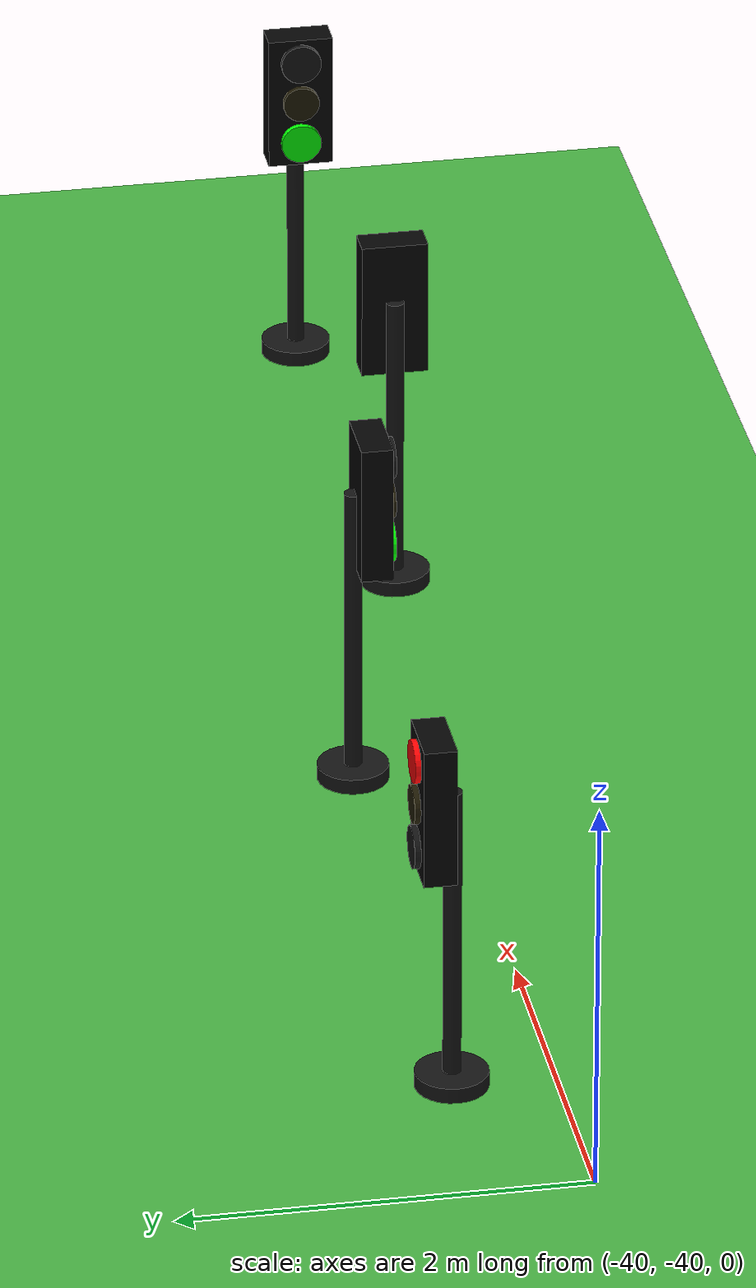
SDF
<sdf version="1.10">
 <world name="city_second">
  <model name="ground_plane">
   <static>true</static>
   <link name="link">
    <collision name="collision">
     <geometry><plane><normal>0 0 1</normal><size>300 300</size></plane></geometry>
    </collision>
    <visual name="visual">
     <geometry><plane><normal>0 0 1</normal><size>300 300</size></plane></geometry>
     <material>
      <ambient>0.280000001 0.689999998 0.25999999 1</ambient>
      <diffuse>0.280000001 0.689999998 0.25999999 1</diffuse>
      <specular>0.0299999993 0.0299999993 0.0299999993 1</specular>
     </material>
    </visual>
    <inertial>
     <mass>1</mass>
     <inertia><ixx>1</ixx><ixy>0</ixy><ixz>0</ixz><iyy>1</iyy><iyz>0</iyz><izz>1</izz></inertia>
    </inertial>
   </link>
  </model>
  <model name="simple_traffic_light_red_north">
   <static>true</static>
   <pose>-39 -39.5 0 0 0 0</pose>
   <link name="base">
    <pose>0 0 0.040000000000000001 0 0 0</pose>
    <collision name="collision">
     <geometry>
      <cylinder><radius>0.17999999999999999</radius><length>0.080000000000000002</length></cylinder>
     </geometry>
    </collision>
    <visual name="visual">
     <geometry>
      <cylinder><radius>0.17999999999999999</radius><length>0.080000000000000002</length></cylinder>
     </geometry>
     <material>
      <ambient>0.0799999982 0.0799999982 0.0799999982 1</ambient>
      <diffuse>0.0799999982 0.0799999982 0.0799999982 1</diffuse>
      <specular>0.150000006 0.150000006 0.150000006 1</specular>
      <emissive>0 0 0 1</emissive>
     </material>
    </visual>
    <inertial>
     <mass>1</mass>
     <inertia><ixx>1</ixx><ixy>0</ixy><ixz>0</ixz><iyy>1</iyy><iyz>0</iyz><izz>1</izz></inertia>
    </inertial>
   </link>
   <link name="pole">
    <pose>0 0 0.80000000000000004 0 0 0</pose>
    <collision name="collision">
     <geometry>
      <cylinder><radius>0.044999999999999998</radius><length>1.6000000000000001</length></cylinder>
     </geometry>
    </collision>
    <visual name="visual">
     <geometry>
      <cylinder><radius>0.044999999999999998</radius><length>1.6000000000000001</length></cylinder>
     </geometry>
     <material>
      <ambient>0.0799999982 0.0799999982 0.0799999982 1</ambient>
      <diffuse>0.0799999982 0.0799999982 0.0799999982 1</diffuse>
      <specular>0.150000006 0.150000006 0.150000006 1</specular>
      <emissive>0 0 0 1</emissive>
     </material>
    </visual>
    <inertial>
     <mass>1</mass>
     <inertia><ixx>1</ixx><ixy>0</ixy><ixz>0</ixz><iyy>1</iyy><iyz>0</iyz><izz>1</izz></inertia>
    </inertial>
   </link>
   <link name="signal_box">
    <pose>0 0.089999999999999997 1.55 0 0 0</pose>
    <collision name="collision">
     <geometry><box><size>0.34000000000000002 0.16 0.71999999999999997</size></box></geometry>
    </collision>
    <visual name="visual">
     <geometry><box><size>0.34000000000000002 0.16 0.71999999999999997</size></box></geometry>
     <material>
      <ambient>0.0199999996 0.0199999996 0.0199999996 1</ambient>
      <diffuse>0.0199999996 0.0199999996 0.0199999996 1</diffuse>
      <specular>0.150000006 0.150000006 0.150000006 1</specular>
      <emissive>0 0 0 1</emissive>
     </material>
    </visual>
    <inertial>
     <mass>1</mass>
     <inertia><ixx>1</ixx><ixy>0</ixy><ixz>0</ixz><iyy>1</iyy><iyz>0</iyz><izz>1</izz></inertia>
    </inertial>
   </link>
   <link name="red_lens">
    <pose>0 0.18099999999999999 1.78 1.5708 0 0</pose>
    <collision name="collision">
     <geometry><cylinder><radius>0.105</radius><length>0.035000000000000003</length></cylinder></geometry>
    </collision>
    <visual name="visual">
     <geometry><cylinder><radius>0.105</radius><length>0.035000000000000003</length></cylinder></geometry>
     <material>
      <ambient>1 0.0199999996 0.0199999996 1</ambient>
      <diffuse>1 0.0199999996 0.0199999996 1</diffuse>
      <specular>0.150000006 0.150000006 0.150000006 1</specular>
      <emissive>1 0.0199999996 0.0199999996 1</emissive>
     </material>
    </visual>
    <inertial>
     <mass>1</mass>
     <inertia><ixx>1</ixx><ixy>0</ixy><ixz>0</ixz><iyy>1</iyy><iyz>0</iyz><izz>1</izz></inertia>
    </inertial>
   </link>
   <link name="yellow_lens">
    <pose>0 0.182 1.55 1.5708 0 0</pose>
    <collision name="collision">
     <geometry>
      <cylinder><radius>0.095000000000000001</radius><length>0.035000000000000003</length></cylinder>
     </geometry>
    </collision>
    <visual name="visual">
     <geometry>
      <cylinder><radius>0.095000000000000001</radius><length>0.035000000000000003</length></cylinder>
     </geometry>
     <material>
      <ambient>0.119999997 0.100000001 0.0199999996 1</ambient>
      <diffuse>0.119999997 0.100000001 0.0199999996 1</diffuse>
      <specular>0.150000006 0.150000006 0.150000006 1</specular>
      <emissive>0 0 0 1</emissive>
     </material>
    </visual>
    <inertial>
     <mass>1</mass>
     <inertia><ixx>1</ixx><ixy>0</ixy><ixz>0</ixz><iyy>1</iyy><iyz>0</iyz><izz>1</izz></inertia>
    </inertial>
   </link>
   <link name="green_lens">
    <pose>0 0.183 1.3200000000000001 1.5708 0 0</pose>
    <collision name="collision">
     <geometry><cylinder><radius>0.105</radius><length>0.035000000000000003</length></cylinder></geometry>
    </collision>
    <visual name="visual">
     <geometry><cylinder><radius>0.105</radius><length>0.035000000000000003</length></cylinder></geometry>
     <material>
      <ambient>0.0799999982 0.0799999982 0.0799999982 1</ambient>
      <diffuse>0.0799999982 0.0799999982 0.0799999982 1</diffuse>
      <specular>0.150000006 0.150000006 0.150000006 1</specular>
      <emissive>0 0 0 1</emissive>
     </material>
    </visual>
    <inertial>
     <mass>1</mass>
     <inertia><ixx>1</ixx><ixy>0</ixy><ixz>0</ixz><iyy>1</iyy><iyz>0</iyz><izz>1</izz></inertia>
    </inertial>
   </link>
   <light name="red_glow" type="point">
    <pose>0 0.28 1.78 0 0 0</pose>
    <diffuse>1 0.02 0.02 1</diffuse>
    <specular>1 0.02 0.02 1</specular>
    <attenuation>
     <range>3.0</range>
     <constant>0.8</constant>
     <linear>0.15</linear>
     <quadratic>0.02</quadratic>
    </attenuation>
    <cast_shadows>false</cast_shadows>
   </light>
  </model>
  <model name="simple_traffic_light_green_south_1">
   <static>true</static>
   <pose>-35.989600000000003 -39.561300000000003 0 0 0 -3.1415899999999999</pose>
   <link name="base">
    <pose>0 0 0.040000000000000001 0 0 0</pose>
    <collision name="collision">
     <geometry>
      <cylinder><radius>0.17999999999999999</radius><length>0.080000000000000002</length></cylinder>
     </geometry>
    </collision>
    <visual name="visual">
     <geometry>
      <cylinder><radius>0.17999999999999999</radius><length>0.080000000000000002</length></cylinder>
     </geometry>
     <material>
      <ambient>0.0799999982 0.0799999982 0.0799999982 1</ambient>
      <diffuse>0.0799999982 0.0799999982 0.0799999982 1</diffuse>
      <specular>0.150000006 0.150000006 0.150000006 1</specular>
      <emissive>0 0 0 1</emissive>
     </material>
    </visual>
    <inertial>
     <mass>1</mass>
     <inertia><ixx>1</ixx><ixy>0</ixy><ixz>0</ixz><iyy>1</iyy><iyz>0</iyz><izz>1</izz></inertia>
    </inertial>
   </link>
   <link name="pole">
    <pose>-7.10543e-15 7.10543e-15 0.80000000000000004 0 0 0</pose>
    <collision name="collision">
     <geometry>
      <cylinder><radius>0.044999999999999998</radius><length>1.6000000000000001</length></cylinder>
     </geometry>
    </collision>
    <visual name="visual">
     <geometry>
      <cylinder><radius>0.044999999999999998</radius><length>1.6000000000000001</length></cylinder>
     </geometry>
     <material>
      <ambient>0.0799999982 0.0799999982 0.0799999982 1</ambient>
      <diffuse>0.0799999982 0.0799999982 0.0799999982 1</diffuse>
      <specular>0.150000006 0.150000006 0.150000006 1</specular>
      <emissive>0 0 0 1</emissive>
     </material>
    </visual>
    <inertial>
     <mass>1</mass>
     <inertia><ixx>1</ixx><ixy>0</ixy><ixz>0</ixz><iyy>1</iyy><iyz>0</iyz><izz>1</izz></inertia>
    </inertial>
   </link>
   <link name="signal_box">
    <pose>-7.10543e-15 0.089999999999999997 1.55 0 0 0</pose>
    <collision name="collision">
     <geometry><box><size>0.34000000000000002 0.16 0.71999999999999997</size></box></geometry>
    </collision>
    <visual name="visual">
     <geometry><box><size>0.34000000000000002 0.16 0.71999999999999997</size></box></geometry>
     <material>
      <ambient>0.0199999996 0.0199999996 0.0199999996 1</ambient>
      <diffuse>0.0199999996 0.0199999996 0.0199999996 1</diffuse>
      <specular>0.150000006 0.150000006 0.150000006 1</specular>
      <emissive>0 0 0 1</emissive>
     </material>
    </visual>
    <inertial>
     <mass>1</mass>
     <inertia><ixx>1</ixx><ixy>0</ixy><ixz>0</ixz><iyy>1</iyy><iyz>0</iyz><izz>1</izz></inertia>
    </inertial>
   </link>
   <link name="red_lens">
    <pose>-7.10543e-15 0.18099999999999999 1.78 1.5708 1.2475000000000005e-16 -1.24751e-16</pose>
    <collision name="collision">
     <geometry><cylinder><radius>0.105</radius><length>0.035000000000000003</length></cylinder></geometry>
    </collision>
    <visual name="visual">
     <geometry><cylinder><radius>0.105</radius><length>0.035000000000000003</length></cylinder></geometry>
     <material>
      <ambient>0.0799999982 0.0799999982 0.0799999982 1</ambient>
      <diffuse>0.0799999982 0.0799999982 0.0799999982 1</diffuse>
      <specular>0.150000006 0.150000006 0.150000006 1</specular>
      <emissive>0 0 0 1</emissive>
     </material>
    </visual>
    <inertial>
     <mass>1</mass>
     <inertia><ixx>1</ixx><ixy>0</ixy><ixz>0</ixz><iyy>1</iyy><iyz>0</iyz><izz>1</izz></inertia>
    </inertial>
   </link>
   <link name="yellow_lens">
    <pose>0 0.182 1.55 1.5708 1.2475000000000005e-16 -1.24751e-16</pose>
    <collision name="collision">
     <geometry>
      <cylinder><radius>0.095000000000000001</radius><length>0.035000000000000003</length></cylinder>
     </geometry>
    </collision>
    <visual name="visual">
     <geometry>
      <cylinder><radius>0.095000000000000001</radius><length>0.035000000000000003</length></cylinder>
     </geometry>
     <material>
      <ambient>0.119999997 0.100000001 0.0199999996 1</ambient>
      <diffuse>0.119999997 0.100000001 0.0199999996 1</diffuse>
      <specular>0.150000006 0.150000006 0.150000006 1</specular>
      <emissive>0 0 0 1</emissive>
     </material>
    </visual>
    <inertial>
     <mass>1</mass>
     <inertia><ixx>1</ixx><ixy>0</ixy><ixz>0</ixz><iyy>1</iyy><iyz>0</iyz><izz>1</izz></inertia>
    </inertial>
   </link>
   <link name="green_lens">
    <pose>-7.10543e-15 0.183 1.3200000000000001 1.5708 1.2475000000000005e-16 -1.24751e-16</pose>
    <collision name="collision">
     <geometry><cylinder><radius>0.105</radius><length>0.035000000000000003</length></cylinder></geometry>
    </collision>
    <visual name="visual">
     <geometry><cylinder><radius>0.105</radius><length>0.035000000000000003</length></cylinder></geometry>
     <material>
      <ambient>0.0199999996 1 0.0199999996 1</ambient>
      <diffuse>0.0199999996 1 0.0199999996 1</diffuse>
      <specular>0.150000006 0.150000006 0.150000006 1</specular>
      <emissive>0.0199999996 1 0.0199999996 1</emissive>
     </material>
    </visual>
    <inertial>
     <mass>1</mass>
     <inertia><ixx>1</ixx><ixy>0</ixy><ixz>0</ixz><iyy>1</iyy><iyz>0</iyz><izz>1</izz></inertia>
    </inertial>
   </link>
   <light name="green_glow" type="point">
    <pose>0 0.28 1.32 0 0 0</pose>
    <diffuse>0.02 1 0.02 1</diffuse>
    <specular>0.02 1 0.02 1</specular>
    <attenuation>
     <range>3.0</range>
     <constant>0.8</constant>
     <linear>0.15</linear>
     <quadratic>0.02</quadratic>
    </attenuation>
    <cast_shadows>false</cast_shadows>
   </light>
  </model>
  <model name="simple_traffic_light_green_east_1">
   <static>true</static>
   <pose>-34.012900000000002 -40.130800000000001 -6.9388900000000004e-18 0 0 -1.5708</pose>
   <link name="base">
    <pose>0 0 0.040000000000000001 0 0 0</pose>
    <collision name="collision">
     <geometry>
      <cylinder><radius>0.17999999999999999</radius><length>0.080000000000000002</length></cylinder>
     </geometry>
    </collision>
    <visual name="visual">
     <geometry>
      <cylinder><radius>0.17999999999999999</radius><length>0.080000000000000002</length></cylinder>
     </geometry>
     <material>
      <ambient>0.0799999982 0.0799999982 0.0799999982 1</ambient>
      <diffuse>0.0799999982 0.0799999982 0.0799999982 1</diffuse>
      <specular>0.150000006 0.150000006 0.150000006 1</specular>
      <emissive>0 0 0 1</emissive>
     </material>
    </visual>
    <inertial>
     <mass>1</mass>
     <inertia><ixx>1</ixx><ixy>0</ixy><ixz>0</ixz><iyy>1</iyy><iyz>0</iyz><izz>1</izz></inertia>
    </inertial>
   </link>
   <link name="pole">
    <pose>-7.10543e-15 -1.4210899999999999e-14 0.80000000000000004 0 0 0</pose>
    <collision name="collision">
     <geometry>
      <cylinder><radius>0.044999999999999998</radius><length>1.6000000000000001</length></cylinder>
     </geometry>
    </collision>
    <visual name="visual">
     <geometry>
      <cylinder><radius>0.044999999999999998</radius><length>1.6000000000000001</length></cylinder>
     </geometry>
     <material>
      <ambient>0.0799999982 0.0799999982 0.0799999982 1</ambient>
      <diffuse>0.0799999982 0.0799999982 0.0799999982 1</diffuse>
      <specular>0.150000006 0.150000006 0.150000006 1</specular>
      <emissive>0 0 0 1</emissive>
     </material>
    </visual>
    <inertial>
     <mass>1</mass>
     <inertia><ixx>1</ixx><ixy>0</ixy><ixz>0</ixz><iyy>1</iyy><iyz>0</iyz><izz>1</izz></inertia>
    </inertial>
   </link>
   <link name="signal_box">
    <pose>-7.10543e-15 0.089999999999999997 1.55 0 0 0</pose>
    <collision name="collision">
     <geometry><box><size>0.34000000000000002 0.16 0.71999999999999997</size></box></geometry>
    </collision>
    <visual name="visual">
     <geometry><box><size>0.34000000000000002 0.16 0.71999999999999997</size></box></geometry>
     <material>
      <ambient>0.0199999996 0.0199999996 0.0199999996 1</ambient>
      <diffuse>0.0199999996 0.0199999996 0.0199999996 1</diffuse>
      <specular>0.150000006 0.150000006 0.150000006 1</specular>
      <emissive>0 0 0 1</emissive>
     </material>
    </visual>
    <inertial>
     <mass>1</mass>
     <inertia><ixx>1</ixx><ixy>0</ixy><ixz>0</ixz><iyy>1</iyy><iyz>0</iyz><izz>1</izz></inertia>
    </inertial>
   </link>
   <link name="red_lens">
    <pose>0 0.18099999999999999 1.78 1.5708 1.5700900000000007e-16 4.0064273223912128e-28</pose>
    <collision name="collision">
     <geometry><cylinder><radius>0.105</radius><length>0.035000000000000003</length></cylinder></geometry>
    </collision>
    <visual name="visual">
     <geometry><cylinder><radius>0.105</radius><length>0.035000000000000003</length></cylinder></geometry>
     <material>
      <ambient>0.0799999982 0.0799999982 0.0799999982 1</ambient>
      <diffuse>0.0799999982 0.0799999982 0.0799999982 1</diffuse>
      <specular>0.150000006 0.150000006 0.150000006 1</specular>
      <emissive>0 0 0 1</emissive>
     </material>
    </visual>
    <inertial>
     <mass>1</mass>
     <inertia><ixx>1</ixx><ixy>0</ixy><ixz>0</ixz><iyy>1</iyy><iyz>0</iyz><izz>1</izz></inertia>
    </inertial>
   </link>
   <link name="yellow_lens">
    <pose>0 0.182 1.55 1.5708 1.5700900000000007e-16 4.0064273223912128e-28</pose>
    <collision name="collision">
     <geometry>
      <cylinder><radius>0.095000000000000001</radius><length>0.035000000000000003</length></cylinder>
     </geometry>
    </collision>
    <visual name="visual">
     <geometry>
      <cylinder><radius>0.095000000000000001</radius><length>0.035000000000000003</length></cylinder>
     </geometry>
     <material>
      <ambient>0.119999997 0.100000001 0.0199999996 1</ambient>
      <diffuse>0.119999997 0.100000001 0.0199999996 1</diffuse>
      <specular>0.150000006 0.150000006 0.150000006 1</specular>
      <emissive>0 0 0 1</emissive>
     </material>
    </visual>
    <inertial>
     <mass>1</mass>
     <inertia><ixx>1</ixx><ixy>0</ixy><ixz>0</ixz><iyy>1</iyy><iyz>0</iyz><izz>1</izz></inertia>
    </inertial>
   </link>
   <link name="green_lens">
    <pose>-7.10543e-15 0.183 1.3200000000000001 1.5708 1.5700900000000007e-16 4.0064273223912128e-28</pose>
    <collision name="collision">
     <geometry><cylinder><radius>0.105</radius><length>0.035000000000000003</length></cylinder></geometry>
    </collision>
    <visual name="visual">
     <geometry><cylinder><radius>0.105</radius><length>0.035000000000000003</length></cylinder></geometry>
     <material>
      <ambient>0.0199999996 1 0.0199999996 1</ambient>
      <diffuse>0.0199999996 1 0.0199999996 1</diffuse>
      <specular>0.150000006 0.150000006 0.150000006 1</specular>
      <emissive>0.0199999996 1 0.0199999996 1</emissive>
     </material>
    </visual>
    <inertial>
     <mass>1</mass>
     <inertia><ixx>1</ixx><ixy>0</ixy><ixz>0</ixz><iyy>1</iyy><iyz>0</iyz><izz>1</izz></inertia>
    </inertial>
   </link>
   <light name="green_glow" type="point">
    <pose>0 0.28 1.32 0 0 0</pose>
    <diffuse>0.02 1 0.02 1</diffuse>
    <specular>0.02 1 0.02 1</specular>
    <attenuation>
     <range>3.0</range>
     <constant>0.8</constant>
     <linear>0.15</linear>
     <quadratic>0.02</quadratic>
    </attenuation>
    <cast_shadows>false</cast_shadows>
   </light>
  </model>
  <model name="simple_traffic_light_green_west_1">
   <static>true</static>
   <pose>-31.413399999999999 -40.07 -6.9388900000000004e-18 0 0 1.5708</pose>
   <link name="base">
    <pose>0 0 0.040000000000000001 0 0 0</pose>
    <collision name="collision">
     <geometry>
      <cylinder><radius>0.17999999999999999</radius><length>0.080000000000000002</length></cylinder>
     </geometry>
    </collision>
    <visual name="visual">
     <geometry>
      <cylinder><radius>0.17999999999999999</radius><length>0.080000000000000002</length></cylinder>
     </geometry>
     <material>
      <ambient>0.0799999982 0.0799999982 0.0799999982 1</ambient>
      <diffuse>0.0799999982 0.0799999982 0.0799999982 1</diffuse>
      <specular>0.150000006 0.150000006 0.150000006 1</specular>
      <emissive>0 0 0 1</emissive>
     </material>
    </visual>
    <inertial>
     <mass>1</mass>
     <inertia><ixx>1</ixx><ixy>0</ixy><ixz>0</ixz><iyy>1</iyy><iyz>0</iyz><izz>1</izz></inertia>
    </inertial>
   </link>
   <link name="pole">
    <pose>0 3.5527100000000001e-15 0.80000000000000004 0 0 0</pose>
    <collision name="collision">
     <geometry>
      <cylinder><radius>0.044999999999999998</radius><length>1.6000000000000001</length></cylinder>
     </geometry>
    </collision>
    <visual name="visual">
     <geometry>
      <cylinder><radius>0.044999999999999998</radius><length>1.6000000000000001</length></cylinder>
     </geometry>
     <material>
      <ambient>0.0799999982 0.0799999982 0.0799999982 1</ambient>
      <diffuse>0.0799999982 0.0799999982 0.0799999982 1</diffuse>
      <specular>0.150000006 0.150000006 0.150000006 1</specular>
      <emissive>0 0 0 1</emissive>
     </material>
    </visual>
    <inertial>
     <mass>1</mass>
     <inertia><ixx>1</ixx><ixy>0</ixy><ixz>0</ixz><iyy>1</iyy><iyz>0</iyz><izz>1</izz></inertia>
    </inertial>
   </link>
   <link name="signal_box">
    <pose>0 0.089999999999999997 1.55 0 0 0</pose>
    <collision name="collision">
     <geometry><box><size>0.34000000000000002 0.16 0.71999999999999997</size></box></geometry>
    </collision>
    <visual name="visual">
     <geometry><box><size>0.34000000000000002 0.16 0.71999999999999997</size></box></geometry>
     <material>
      <ambient>0.0199999996 0.0199999996 0.0199999996 1</ambient>
      <diffuse>0.0199999996 0.0199999996 0.0199999996 1</diffuse>
      <specular>0.150000006 0.150000006 0.150000006 1</specular>
      <emissive>0 0 0 1</emissive>
     </material>
    </visual>
    <inertial>
     <mass>1</mass>
     <inertia><ixx>1</ixx><ixy>0</ixy><ixz>0</ixz><iyy>1</iyy><iyz>0</iyz><izz>1</izz></inertia>
    </inertial>
   </link>
   <link name="red_lens">
    <pose>0 0.18099999999999999 1.78 1.5708 -1.5700900000000007e-16 -4.0064273223912128e-28</pose>
    <collision name="collision">
     <geometry><cylinder><radius>0.105</radius><length>0.035000000000000003</length></cylinder></geometry>
    </collision>
    <visual name="visual">
     <geometry><cylinder><radius>0.105</radius><length>0.035000000000000003</length></cylinder></geometry>
     <material>
      <ambient>0.0799999982 0.0799999982 0.0799999982 1</ambient>
      <diffuse>0.0799999982 0.0799999982 0.0799999982 1</diffuse>
      <specular>0.150000006 0.150000006 0.150000006 1</specular>
      <emissive>0 0 0 1</emissive>
     </material>
    </visual>
    <inertial>
     <mass>1</mass>
     <inertia><ixx>1</ixx><ixy>0</ixy><ixz>0</ixz><iyy>1</iyy><iyz>0</iyz><izz>1</izz></inertia>
    </inertial>
   </link>
   <link name="yellow_lens">
    <pose>0 0.182 1.55 1.5708 -1.5700900000000007e-16 -4.0064273223912128e-28</pose>
    <collision name="collision">
     <geometry>
      <cylinder><radius>0.095000000000000001</radius><length>0.035000000000000003</length></cylinder>
     </geometry>
    </collision>
    <visual name="visual">
     <geometry>
      <cylinder><radius>0.095000000000000001</radius><length>0.035000000000000003</length></cylinder>
     </geometry>
     <material>
      <ambient>0.119999997 0.100000001 0.0199999996 1</ambient>
      <diffuse>0.119999997 0.100000001 0.0199999996 1</diffuse>
      <specular>0.150000006 0.150000006 0.150000006 1</specular>
      <emissive>0 0 0 1</emissive>
     </material>
    </visual>
    <inertial>
     <mass>1</mass>
     <inertia><ixx>1</ixx><ixy>0</ixy><ixz>0</ixz><iyy>1</iyy><iyz>0</iyz><izz>1</izz></inertia>
    </inertial>
   </link>
   <link name="green_lens">
    <pose>0 0.183 1.3200000000000001 1.5708 -1.5700900000000007e-16 -4.0064273223912128e-28</pose>
    <collision name="collision">
     <geometry><cylinder><radius>0.105</radius><length>0.035000000000000003</length></cylinder></geometry>
    </collision>
    <visual name="visual">
     <geometry><cylinder><radius>0.105</radius><length>0.035000000000000003</length></cylinder></geometry>
     <material>
      <ambient>0.0199999996 1 0.0199999996 1</ambient>
      <diffuse>0.0199999996 1 0.0199999996 1</diffuse>
      <specular>0.150000006 0.150000006 0.150000006 1</specular>
      <emissive>0.0199999996 1 0.0199999996 1</emissive>
     </material>
    </visual>
    <inertial>
     <mass>1</mass>
     <inertia><ixx>1</ixx><ixy>0</ixy><ixz>0</ixz><iyy>1</iyy><iyz>0</iyz><izz>1</izz></inertia>
    </inertial>
   </link>
   <light name="green_glow" type="point">
    <pose>0 0.28 1.32 0 0 0</pose>
    <diffuse>0.02 1 0.02 1</diffuse>
    <specular>0.02 1 0.02 1</specular>
    <attenuation>
     <range>3.0</range>
     <constant>0.8</constant>
     <linear>0.15</linear>
     <quadratic>0.02</quadratic>
    </attenuation>
    <cast_shadows>false</cast_shadows>
   </light>
  </model>
 </world>
</sdf>
